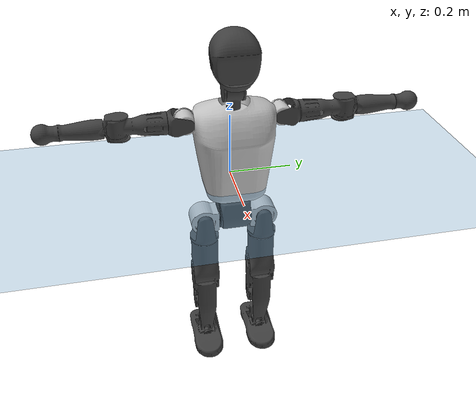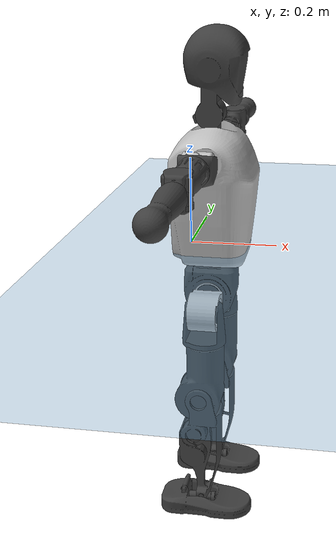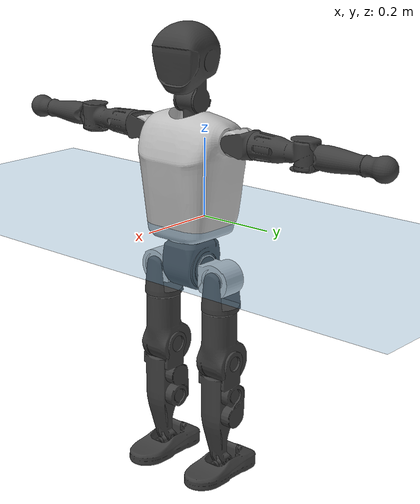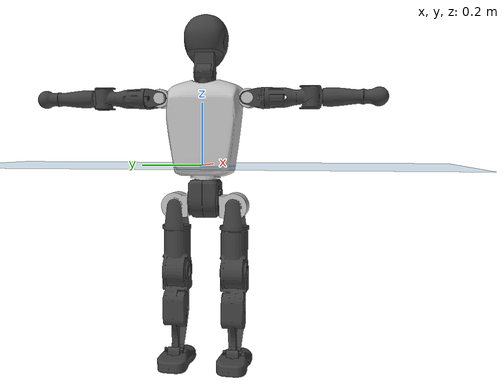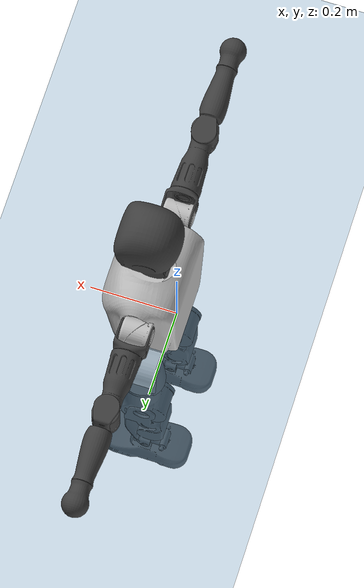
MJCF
<mujoco model="T1">
  <compiler angle="radian" assetdir="assets" balanceinertia="true" inertiafromgeom="false"/>

  <option timestep="0.005" density="1.2" viscosity="2e-05"/>

  <size nkey="1"/>

  <visual>
    <quality shadowsize="8192"/>
    <map shadowclip="0.5"/>
  </visual>

  <default>
    <default class="/">
      <joint armature="0.01" damping="0.01" frictionloss="0.1"/>
      <geom contype="0" conaffinity="0" group="1" solref="-1000 -80"/>
      <site size="0.01 0.005 0.005" group="5"/>
      <general forcelimited="true" biastype="affine" gainprm="25" biasprm="0 -25 -0.6"/>
      <default class="t1">
        <geom rgba="0.25 0.25 0.25 1"/>
        <default class="visual">
          <geom type="mesh" group="2"/>
        </default>
        <default class="collision">
          <geom group="3"/>
        </default>
        <default class="foot">
          <geom size="0.1115 0.05 0.015" type="box" condim="6" group="4" priority="1" solimp="0.015 1 0.015"/>
        </default>
        <default class="reward_collision_sphere">
          <geom group="5" rgba="1 0 0 1"/>
        </default>
      </default>
    </default>
  </default>

  <asset>
    <texture type="skybox" colorspace="auto" name="//unnamed_texture_0" builtin="gradient" rgb1="0.95 0.95 0.95" rgb2="0.95 0.95 0.95" width="100" height="600"/>
    <texture type="2d" colorspace="auto" name="texplane" builtin="checker" rgb1="0.345 0.575 0.748" rgb2="0.345 0.575 0.748" markrgb="1 1 1" width="512" height="512"/>
    <material name="MatPlane" class="/" texture="texplane" texuniform="true" texrepeat="2 2" specular="0.9"/>
    <mesh name="Trunk" class="/" file="Trunk.stl"/>
    <mesh name="H1" class="/" file="H1.stl"/>
    <mesh name="H2" class="/" file="H2.stl"/>
    <mesh name="AL1" class="/" file="AL1.stl"/>
    <mesh name="AL2" class="/" file="AL2.stl"/>
    <mesh name="AL3" class="/" file="AL3.stl"/>
    <mesh name="left_hand_link" class="/" file="left_hand_link.stl"/>
    <mesh name="AR1" class="/" file="AR1.stl"/>
    <mesh name="AR2" class="/" file="AR2.stl"/>
    <mesh name="AR3" class="/" file="AR3.stl"/>
    <mesh name="right_hand_link" class="/" file="right_hand_link.stl"/>
    <mesh name="Waist" class="/" file="Waist.stl"/>
    <mesh name="Hip_Pitch_Left" class="/" file="Hip_Pitch_Left.stl"/>
    <mesh name="Hip_Roll_Left" class="/" file="Hip_Roll_Left.stl"/>
    <mesh name="Hip_Yaw_Left" class="/" file="Hip_Yaw_Left.stl"/>
    <mesh name="Shank_Left" class="/" file="Shank_Left.stl"/>
    <mesh name="Ankle_Cross_Left" class="/" file="Ankle_Cross_Left.stl"/>
    <mesh name="left_foot_link" class="/" file="left_foot_link.stl"/>
    <mesh name="Hip_Pitch_Right" class="/" file="Hip_Pitch_Right.stl"/>
    <mesh name="Hip_Roll_Right" class="/" file="Hip_Roll_Right.stl"/>
    <mesh name="Hip_Yaw_Right" class="/" file="Hip_Yaw_Right.stl"/>
    <mesh name="Shank_Right" class="/" file="Shank_Right.stl"/>
    <mesh name="Ankle_Cross_Right" class="/" file="Ankle_Cross_Right.stl"/>
    <mesh name="right_foot_link" class="/" file="right_foot_link.stl"/>
  </asset>

  <worldbody>
    <geom name="floor" class="/" size="100 100 0.125" type="plane" group="0" material="MatPlane"/>
    <light name="toplight_shadow" class="/" pos="0 0 5" dir="0.0990148 0.0990148 -0.990148" type="directional" ambient="0.04 0.04 0.04" diffuse="0.55 0.55 0.55" specular="0.12 0.12 0.12"/>
    <light name="toplight_fill" class="/" pos="0 0 5" dir="0.0990148 0.0990148 -0.990148" type="directional" castshadow="false" ambient="0.04 0.04 0.04" diffuse="0.3 0.3 0.3" specular="0.08 0.08 0.08"/>
    <body name="trunk" childclass="t1" pos="-6.97014e-05 0.000356176 -5.86708e-05" quat="1 -7.57042e-06 -3.22234e-06 4.9865e-06">
      <inertial pos="0.0428413 -0.000487704 0.104563" quat="0.999945 0.00190408 -0.00977182 -0.00327394" mass="8.79601" diaginertia="0.0290253 0.0551539 0.0538167"/>
      <joint name="//unnamed_joint_0" type="free" armature="0" damping="0" frictionloss="0"/>
      <geom name="//unnamed_geom_1" class="visual" rgba="0.76 0.76 0.76 1" mesh="Trunk"/>
      <geom name="//unnamed_geom_2" class="collision" size="0.0679548 0.0906064 0.13591" pos="0.0476524 0 0.119083" type="box"/>
      <geom name="//unnamed_geom_3" class="reward_collision_sphere" size="0.104197" pos="0.0476524 0 0.0992357"/>
      <geom name="//unnamed_geom_4" class="reward_collision_sphere" size="0.013591" pos="0.0476524 0.0791883 0"/>
      <geom name="//unnamed_geom_5" class="reward_collision_sphere" size="0.013591" pos="0.0476524 -0.0791883 0"/>
      <geom name="//unnamed_geom_6" class="reward_collision_sphere" size="0.013591" pos="0.0476524 0.0996841 0.178624"/>
      <geom name="//unnamed_geom_7" class="reward_collision_sphere" size="0.013591" pos="0.0476524 -0.0996841 0.178624"/>
      <site name="imu" pos="-0.000198262 0.00328864 0.0044718" size="0.00906064"/>
      <camera name="track" pos="0 -1.86325 0" quat="0.707107 0.707107 0 0" mode="trackcom"/>
      <camera name="ego_camera" pos="0.0968932 0 0.41679" quat="-0.5 -0.5 0.5 0.5"/>
      <body name="H1" pos="0.0490769 0.000532937 0.24145" quat="1 -3.62509e-05 -8.44632e-05 -0.000196187">
        <inertial pos="-0.000687383 -0.00189944 0.056092" quat="0.764947 -0.0111688 0.00288785 0.64399" mass="0.327559" diaginertia="7.74572e-05 0.000155449 0.000145483"/>
        <joint name="AAHead_yaw" pos="0 0 0" axis="0.00368721 0.00237563 0.99999" stiffness="0.000774939" range="-1.58916 1.59886" armature="0.00911468" damping="0.00870214" frictionloss="0.0935858"/>
        <geom name="//unnamed_geom_8" class="visual" mesh="H1"/>
        <body name="H2" pos="-0.000359294 -0.000292167 0.0593279" quat="1 0.000165695 -0.00031928 0.000768752">
          <inertial pos="0.00643445 2.90212e-05 0.0976845" quat="0.988651 0.103301 -0.0763284 -0.0779288" mass="0.468877" diaginertia="0.000644531 0.0013691 0.00162776"/>
          <joint name="Head_pitch" pos="0 0 0" axis="0.00069661 -1 0.000694622" range="-1.21963 0.345746" armature="0.0089369" damping="0.00801038" frictionloss="0.089131"/>
          <geom name="//unnamed_geom_9" class="visual" mesh="H2"/>
          <geom name="//unnamed_geom_10" class="collision" size="0.0724851" pos="0.00794206 0 0.109159"/>
          <geom name="//unnamed_geom_11" class="reward_collision_sphere" size="0.0815457" pos="0.0158841 0 0.0992357"/>
        </body>
      </body>
      <body name="AL1" pos="0.0470107 0.0987463 0.217978" quat="1 1.63132e-05 0.000444352 8.58671e-06">
        <inertial pos="-0.00112603 0.0423852 4.78909e-05" quat="0.505352 0.491802 -0.505172 0.497546" mass="0.395904" diaginertia="0.000438312 0.000909348 0.000282976"/>
        <joint name="Left_Shoulder_Pitch" pos="0 0 0" axis="0.00205729 0.999997 0.00127743" range="-3.28297 1.22333" armature="0.00927365" damping="0.011948" frictionloss="0.0949859"/>
        <geom name="//unnamed_geom_12" class="visual" rgba="0.76 0.76 0.76 1" mesh="AL1"/>
        <body name="AL2" pos="0.00107412 0.0435441 -0.000171101" quat="1 -0.000236997 -0.000360557 -0.000167947">
          <inertial pos="0.00460628 0.0343286 -0.000245258" quat="0.489693 0.511896 -0.484171 0.513557" mass="0.118276" diaginertia="0.000125806 0.000239167 0.000169166"/>
          <joint name="Left_Shoulder_Roll" pos="0 0 0" axis="-0.999998 0.000130753 -0.0018197" stiffness="0.00177452" range="-1.57449 1.73665" armature="0.0087881" damping="0.00470577" frictionloss="0.0883014"/>
          <geom name="//unnamed_geom_13" class="visual" mesh="AL2"/>
          <body name="AL3" pos="0.00165897 0.0576062 0.00089761" quat="1 -0.000199979 -1.42777e-06 -0.000349463">
            <inertial pos="0.000660224 0.0798545 -0.001183" quat="0.709329 0.70484 0.000513705 -0.0072426" mass="0.774621" diaginertia="0.00416794 0.00937022 0.000609581"/>
            <joint name="Left_Elbow_Pitch" pos="0 0 0" axis="0.000918253 -0.999998 -0.0016042" range="-2.27224 2.29799" armature="0.00917353" damping="0.0104431" frictionloss="0.0973277"/>
            <geom name="//unnamed_geom_14" class="visual" mesh="AL3"/>
            <geom name="//unnamed_geom_15" class="collision" size="0.0271819 0.0679548" pos="0 0.0465814 0" quat="0.707105 0.707108 0 0" type="cylinder"/>
            <geom name="//unnamed_geom_16" class="reward_collision_sphere" size="0.0326183"/>
            <body name="left_hand_link" pos="0.00145617 0.136465 0.00146466" quat="1 -4.84117e-06 -0.000215064 -0.000621999">
              <inertial pos="-0.00068061 0.101915 0.000268962" quat="0.707871 0.706342 -7.31637e-05 -0.000239108" mass="0.246747" diaginertia="0.00262306 0.0057194 0.000205755"/>
              <joint name="Left_Elbow_Yaw" pos="0 0 0" axis="0.00397103 0.00355222 0.999986" range="-2.42574 0.0316164" armature="0.00893469" damping="0.00601741" frictionloss="0.0863063"/>
              <geom name="//unnamed_geom_17" class="visual" mesh="left_hand_link"/>
              <geom name="//unnamed_geom_18" class="collision" size="0.0271819 0.0792806" pos="0 0.121112 0" quat="0.707105 0.707108 0 0" type="cylinder"/>
              <geom name="//unnamed_geom_19" class="reward_collision_sphere" size="0.0453032"/>
              <geom name="//unnamed_geom_20" class="reward_collision_sphere" size="0.0317122" pos="0 0.102479 0"/>
              <geom name="//unnamed_geom_21" class="reward_collision_sphere" size="0.0317122" pos="0 0.2003 0"/>
            </body>
          </body>
        </body>
      </body>
      <body name="AR1" pos="0.0452881 -0.0971131 0.216068" quat="1 0.000136368 0.000425451 5.73075e-06">
        <inertial pos="-0.000555364 -0.0428365 -0.000393697" quat="0.504262 0.495149 -0.503469 0.497058" mass="0.389547" diaginertia="0.000433403 0.000917897 0.000282603"/>
        <joint name="Right_Shoulder_Pitch" pos="0 0 0" axis="0.0039352 -0.999945 0.00967714" range="-1.22688 3.33042" armature="0.00892429" damping="0.00208962" frictionloss="0.0848655"/>
        <geom name="//unnamed_geom_22" class="visual" rgba="0.76 0.76 0.76 1" mesh="AR1"/>
        <body name="AR2" pos="0.000889673 -0.0431405 -3.20389e-05" quat="1 -4.99805e-05 3.13508e-05 -0.000135634">
          <inertial pos="0.00295951 -0.0351629 0.00101478" quat="0.511073 0.490503 -0.510004 0.487961" mass="0.122339" diaginertia="0.000128098 0.000248593 0.000172339"/>
          <joint name="Right_Shoulder_Roll" pos="0 0 0" axis="-0.999952 -0.0072041 0.00666798" range="-1.73988 1.56855" armature="0.00884807" damping="0.0055923" frictionloss="0.0917706"/>
          <geom name="//unnamed_geom_23" class="visual" mesh="AR2"/>
          <body name="AR3" pos="-0.0010499 -0.056684 0.000608334" quat="1 0.000106427 -9.32798e-05 -0.000429936">
            <inertial pos="-0.000529189 -0.0795704 -2.1446e-05" quat="0.70832 0.705876 0.00197957 -0.00431467" mass="0.776808" diaginertia="0.00415971 0.00919557 0.000609948"/>
            <joint name="Right_Elbow_Pitch" pos="0 0 0" axis="0.000216124 1 6.12472e-05" range="-2.27191 2.25788" armature="0.00909925" damping="0.00997123" frictionloss="0.0899301"/>
            <geom name="//unnamed_geom_24" class="visual" mesh="AR3"/>
            <geom name="//unnamed_geom_25" class="collision" size="0.0271819 0.0679548" pos="0 -0.0465814 0" quat="0.707105 0.707108 0 0" type="cylinder"/>
            <geom name="//unnamed_geom_26" class="reward_collision_sphere" size="0.0326183"/>
            <body name="right_hand_link" pos="-3.58419e-05 -0.137294 -0.000176137" quat="1 2.4502e-05 6.10403e-06 1.62626e-05">
              <inertial pos="-0.000721705 -0.102228 -0.000271233" quat="0.706862 0.707345 -0.00252365 0.00126367" mass="0.240748" diaginertia="0.00261587 0.00571535 0.000207878"/>
              <joint name="Right_Elbow_Yaw" pos="0 0 0" axis="-0.00068531 0.0012566 0.999999" range="-0.0171297 2.44964" armature="0.00884212" damping="0.00807197" frictionloss="0.0891455"/>
              <geom name="//unnamed_geom_27" class="visual" mesh="right_hand_link"/>
              <geom name="//unnamed_geom_28" class="collision" size="0.0271819 0.0792806" pos="0 -0.121112 0" quat="0.707105 0.707108 0 0" type="cylinder"/>
              <geom name="//unnamed_geom_29" class="reward_collision_sphere" size="0.0453032"/>
              <geom name="//unnamed_geom_30" class="reward_collision_sphere" size="0.0317122" pos="0 -0.102479 0"/>
              <geom name="//unnamed_geom_31" class="reward_collision_sphere" size="0.0317122" pos="0 -0.2003 0"/>
            </body>
          </body>
        </body>
      </body>
      <body name="Waist" pos="0.0481902 -0.00138736 -0.114248" quat="1 -4.62019e-06 1.73927e-05 -8.24265e-06">
        <inertial pos="0.00214664 -0.00083043 0.00777768" quat="0.983642 0.000319083 -0.180116 0.00266872" mass="1.87596" diaginertia="0.00164821 0.00363464 0.00450753"/>
        <joint name="Waist" pos="0 0 0" axis="0.00160957 0.0019801 0.999997" range="-1.56433 1.57465" armature="0.00884334" damping="0.00917096" frictionloss="0.0852768"/>
        <geom name="//unnamed_geom_32" class="visual" mesh="Waist"/>
        <body name="Hip_Pitch_Left" pos="-0.000598906 0.0978008 0.000327488" quat="1 -0.000418934 -0.000112407 -4.01336e-05">
          <inertial pos="0.000568855 -0.00662348 -0.0179438" quat="0.975828 0.218217 0.0112902 0.00360714" mass="0.759429" diaginertia="0.00057607 0.00105565 0.0012357"/>
          <joint name="Left_Hip_Pitch" pos="0 0 0" axis="0.00226571 0.999982 0.00550169" range="-1.81072 1.56249" armature="0.00933936" damping="0.0119433" frictionloss="0.0867511"/>
          <geom name="//unnamed_geom_33" class="visual" rgba="0.76 0.76 0.76 1" mesh="Hip_Pitch_Left"/>
          <body name="Hip_Roll_Left" pos="0.00137599 -0.000808075 -0.0209025" quat="1 0.000926925 -0.000254625 0.000141896">
            <inertial pos="0.000302125 -0.000225069 -0.0534859" quat="0.709914 0.00070455 -0.00434356 0.704275" mass="0.287466" diaginertia="0.000550058 0.00107603 0.000500933"/>
            <joint name="Left_Hip_Roll" pos="0 0 0" axis="-0.999977 -0.00596007 -0.00317217" range="-1.56488 0.222186" armature="0.00941385" damping="0.0121201" frictionloss="0.0895616"/>
            <geom name="//unnamed_geom_34" class="visual" mesh="Hip_Roll_Left"/>
            <geom name="//unnamed_geom_35" class="reward_collision_sphere" size="0.0498335"/>
            <body name="Hip_Yaw_Left" pos="0.00235951 -0.00101352 -0.0812871" quat="1 0.000357995 0.000553884 -0.000369299">
              <inertial pos="-0.00498767 -0.00077723 -0.0877823" quat="0.69665 -0.0362679 -0.0313281 0.715809" mass="1.61274" diaginertia="0.00817951 0.0177859 0.00249531"/>
              <joint name="Left_Hip_Yaw" pos="0 0 0" axis="-0.00584775 0.0043106 -0.999974" range="-1.00406 0.983099" armature="0.0093104" damping="0.00980867" frictionloss="0.0861725"/>
              <geom name="//unnamed_geom_36" class="visual" mesh="Hip_Yaw_Left"/>
              <geom name="//unnamed_geom_37" class="collision" size="0.0453032 0.0724851" type="cylinder"/>
              <body name="Shank_Left" pos="-0.0116949 -0.000446421 -0.134842" quat="1 -2.84113e-05 7.23361e-05 6.80204e-06">
                <inertial pos="-0.00427512 -0.000147357 -0.123267" quat="0.997546 0.000233378 -0.0243713 0.0656346" mass="1.30311" diaginertia="0.0110414 0.0244093 0.00179536"/>
                <joint name="Left_Knee_Pitch" pos="0 0 0" axis="0.000339704 1 0.0007772" range="-0.0189986 2.32149" armature="0.00894958" damping="0.011165" frictionloss="0.0927775"/>
                <geom name="//unnamed_geom_38" class="visual" mesh="Shank_Left"/>
                <geom name="//unnamed_geom_39" class="collision" size="0.0453032 0.0679548" pos="0 0 -0.119083" type="cylinder"/>
                <geom name="//unnamed_geom_40" class="reward_collision_sphere" size="0.0588941"/>
                <body name="Ankle_Cross_Left" pos="-0.000699986 -0.000173173 -0.276951" quat="1 -0.00026208 -0.000133792 0.000239896">
                  <inertial pos="-0.00300729 -0.000181462 -0.0070062" quat="0.444082 0.55013 0.551033 0.443295" mass="0.0553555" diaginertia="9.12912e-06 1.83739e-05 1.10157e-05"/>
                  <joint name="Left_Ankle_Pitch" pos="0 0 0" axis="0.00199933 0.999989 -0.00433462" range="-0.858281 0.336671" armature="0.00901853" damping="0.00414173" frictionloss="0.0919738"/>
                  <geom name="//unnamed_geom_41" class="visual" mesh="Ankle_Cross_Left"/>
                  <body name="left_foot_link" pos="-0.000875065 -0.000544345 -0.0119123" quat="1 -9.96819e-05 -3.11818e-05 1.77122e-05">
                    <inertial pos="-0.000690687 0.000365945 -0.00873987" quat="-0.00129404 0.618591 0.00099451 0.785712" mass="0.500837" diaginertia="0.000867717 0.00164792 0.00207024"/>
                    <joint name="Left_Ankle_Roll" pos="0 0 0" axis="-1 -0.000127525 -0.000242462" range="-0.426561 0.464414" armature="0.00971233" damping="0.00990759" frictionloss="0.0873907"/>
                    <geom name="//unnamed_geom_42" class="visual" mesh="left_foot_link"/>
                    <geom name="left_foot" class="foot" size="0.104271 0.0439817 0.0140961" pos="0.00794206 0 -0.0148854"/>
                    <geom name="//unnamed_geom_44" class="reward_collision_sphere" size="0.0471153" pos="0.00794206 0 -0.0148854"/>
                    <geom name="//unnamed_geom_45" class="reward_collision_sphere" size="0.0271819" pos="0.0754496 -0.0214274 -0.0148854"/>
                    <geom name="//unnamed_geom_46" class="reward_collision_sphere" size="0.0271819" pos="-0.0555944 -0.0214274 -0.0148854"/>
                    <site name="left_foot" class="foot" pos="0.00794206 0 -0.0148854" size="0.00906064"/>
                  </body>
                </body>
              </body>
            </body>
          </body>
        </body>
        <body name="Hip_Pitch_Right" pos="-0.000268217 -0.0977594 -0.000224246" quat="1 0.000245646 0.000276724 -0.000244233">
          <inertial pos="-0.000316089 0.00755953 -0.0177664" quat="0.973731 -0.227434 0.0105484 -0.00312095" mass="0.777529" diaginertia="0.000577344 0.00103876 0.00121746"/>
          <joint name="Right_Hip_Pitch" pos="0 0 0" axis="-0.00316223 -0.999994 0.00172013" range="-1.5701 1.81525" armature="0.0099268" damping="0.00632239" frictionloss="0.0950278"/>
          <geom name="//unnamed_geom_47" class="visual" rgba="0.76 0.76 0.76 1" mesh="Hip_Pitch_Right"/>
          <body name="Hip_Roll_Right" pos="0.000372003 0.000666194 -0.0188865" quat="1 0.000192784 0.000403733 -0.000166072">
            <inertial pos="0.000804371 -0.00162337 -0.0530679" quat="0.70749 -0.00198931 -0.00708704 0.706685" mass="0.281328" diaginertia="0.000541826 0.00103681 0.000483558"/>
            <joint name="Right_Hip_Roll" pos="0 0 0" axis="-0.999998 2.39575e-05 0.00220821" range="-0.208284 1.57022" armature="0.00904903" damping="0.00542612" frictionloss="0.0905534"/>
            <geom name="//unnamed_geom_48" class="visual" mesh="Hip_Roll_Right"/>
            <geom name="//unnamed_geom_49" class="reward_collision_sphere" size="0.0498335"/>
            <body name="Hip_Yaw_Right" pos="0.000517118 -1.25328e-05 -0.08207" quat="1 -0.000201329 -0.000122164 2.52189e-05">
              <inertial pos="-0.00576096 -0.00216131 -0.089702" quat="0.712468 -0.0326702 -0.0313483 0.700242" mass="1.56139" diaginertia="0.00793653 0.0173376 0.00244797"/>
              <joint name="Right_Hip_Yaw" pos="0 0 0" axis="-0.00041907 0.000614691 -1" stiffness="0.000282101" range="-0.987263 1.01025" armature="0.00894388" damping="0.00584932" frictionloss="0.0909523"/>
              <geom name="//unnamed_geom_50" class="visual" mesh="Hip_Yaw_Right"/>
              <geom name="//unnamed_geom_51" class="collision" size="0.0453032 0.0724851" type="cylinder"/>
              <body name="Shank_Right" pos="-0.0103962 -0.00139859 -0.133916" quat="1 -0.000104477 -0.000186513 -0.000238034">
                <inertial pos="-0.00528415 -0.00064507 -0.120678" quat="0.999235 0.000442474 -0.023982 -0.0309002" mass="1.33343" diaginertia="0.0108247 0.0247103 0.0018878"/>
                <joint name="Right_Knee_Pitch" pos="0 0 0" axis="0.00220813 -0.999987 -0.00455716" range="-2.36072 -0.0198705" armature="0.00908804" damping="0.00604669" frictionloss="0.0891598"/>
                <geom name="//unnamed_geom_52" class="visual" mesh="Shank_Right"/>
                <geom name="//unnamed_geom_53" class="collision" size="0.0453032 0.0679548" pos="0 0 -0.119083" type="cylinder"/>
                <geom name="//unnamed_geom_54" class="reward_collision_sphere" size="0.0588941"/>
                <body name="Ankle_Cross_Right" pos="0.000733873 -0.000862511 -0.277244" quat="1 -3.04958e-05 4.00688e-05 1.35559e-05">
                  <inertial pos="-0.00277138 0.00025092 -0.00910202" quat="0.444321 0.553411 0.552282 0.437378" mass="0.0539976" diaginertia="8.88991e-06 1.78573e-05 1.06325e-05"/>
                  <joint name="Right_Ankle_Pitch" pos="0 0 0" axis="-0.00142173 -0.999994 0.00308949" range="-0.357127 0.853041" armature="0.00901859" damping="0.00652046" frictionloss="0.0898344"/>
                  <geom name="//unnamed_geom_55" class="visual" mesh="Ankle_Cross_Right"/>
                  <body name="right_foot_link" pos="0.000181248 -0.000821193 -0.011873" quat="1 0.000248441 5.75211e-05 0.000353343">
                    <inertial pos="-0.00176974 0.0001557 -0.00911363" quat="-0.000324345 0.622022 0.000229713 0.782999" mass="0.506599" diaginertia="0.000852548 0.00167485 0.00211735"/>
                    <joint name="Right_Ankle_Roll" pos="0 0 0" axis="-0.999999 0.000155713 -0.00106086" range="-0.443603 0.44271" armature="0.00861467" damping="0.0160335" frictionloss="0.0891384"/>
                    <geom name="//unnamed_geom_56" class="visual" mesh="right_foot_link"/>
                    <geom name="right_foot" class="foot" size="0.0973755 0.0453495 0.0139411" pos="0.00794206 0 -0.0148854"/>
                    <geom name="//unnamed_geom_58" class="reward_collision_sphere" size="0.0362425"/>
                    <geom name="//unnamed_geom_59" class="reward_collision_sphere" size="0.0271819" pos="0.00794206 0 -0.0148854"/>
                    <geom name="//unnamed_geom_60" class="reward_collision_sphere" size="0.0271819" pos="0.0754496 0.0214274 -0.0148854"/>
                    <geom name="//unnamed_geom_61" class="reward_collision_sphere" size="0.0271819" pos="-0.0555944 0.0214274 -0.0148854"/>
                    <site name="right_foot" class="foot" pos="0.00794206 0 -0.0148854" size="0.00906064"/>
                  </body>
                </body>
              </body>
            </body>
          </body>
        </body>
      </body>
    </body>
  </worldbody>

  <contact>
    <pair class="/" geom1="floor" geom2="left_foot" name="//unnamed_contact_0"/>
    <pair class="/" geom1="floor" geom2="right_foot" name="//unnamed_contact_1"/>
  </contact>

  <actuator>
    <general name="AAHead_yaw" class="/" joint="AAHead_yaw" forcerange="-6.24917 6.24917" gainprm="22.6372" biasprm="0 -22.6372 -0.542273"/>
    <general name="Head_pitch" class="/" joint="Head_pitch" forcerange="-6.28748 6.28748" gainprm="22.6372" biasprm="0 -22.6372 -0.542273"/>
    <general name="Left_Shoulder_Pitch" class="/" joint="Left_Shoulder_Pitch" forcerange="-16.7903 16.7903" gainprm="22.6372" biasprm="0 -22.6372 -0.542273"/>
    <general name="Left_Shoulder_Roll" class="/" joint="Left_Shoulder_Roll" forcerange="-16.5103 16.5103" gainprm="22.6372" biasprm="0 -22.6372 -0.542273"/>
    <general name="Left_Elbow_Pitch" class="/" joint="Left_Elbow_Pitch" forcerange="-16.9959 16.9959" gainprm="22.6372" biasprm="0 -22.6372 -0.542273"/>
    <general name="Left_Elbow_Yaw" class="/" joint="Left_Elbow_Yaw" forcerange="-16.7772 16.7772" gainprm="22.6372" biasprm="0 -22.6372 -0.542273"/>
    <general name="Right_Shoulder_Pitch" class="/" joint="Right_Shoulder_Pitch" forcerange="-15.5971 15.5971" gainprm="22.6372" biasprm="0 -22.6372 -0.542273"/>
    <general name="Right_Shoulder_Roll" class="/" joint="Right_Shoulder_Roll" forcerange="-16.5479 16.5479" gainprm="22.6372" biasprm="0 -22.6372 -0.542273"/>
    <general name="Right_Elbow_Pitch" class="/" joint="Right_Elbow_Pitch" forcerange="-17.0526 17.0526" gainprm="22.6372" biasprm="0 -22.6372 -0.542273"/>
    <general name="Right_Elbow_Yaw" class="/" joint="Right_Elbow_Yaw" forcerange="-15.7028 15.7028" gainprm="22.6372" biasprm="0 -22.6372 -0.542273"/>
    <general name="Waist" class="/" joint="Waist" forcerange="-26.9868 26.9868" gainprm="22.6372" biasprm="0 -22.6372 -0.542273"/>
    <general name="Left_Hip_Pitch" class="/" joint="Left_Hip_Pitch" forcerange="-41.7096 41.7096" gainprm="22.6372" biasprm="0 -22.6372 -0.542273"/>
    <general name="Left_Hip_Roll" class="/" joint="Left_Hip_Roll" forcerange="-27.9906 27.9906" gainprm="22.6372" biasprm="0 -22.6372 -0.542273"/>
    <general name="Left_Hip_Yaw" class="/" joint="Left_Hip_Yaw" forcerange="-25.5633 25.5633" gainprm="22.6372" biasprm="0 -22.6372 -0.542273"/>
    <general name="Left_Knee_Pitch" class="/" joint="Left_Knee_Pitch" forcerange="-53.8695 53.8695" gainprm="22.6372" biasprm="0 -22.6372 -0.542273"/>
    <general name="Left_Ankle_Pitch" class="/" joint="Left_Ankle_Pitch" forcerange="-16.8211 16.8211" gainprm="22.6372" biasprm="0 -22.6372 -0.542273"/>
    <general name="Left_Ankle_Roll" class="/" joint="Left_Ankle_Roll" forcerange="-13.5705 13.5705" gainprm="22.6372" biasprm="0 -22.6372 -0.542273"/>
    <general name="Right_Hip_Pitch" class="/" joint="Right_Hip_Pitch" forcerange="-40.5565 40.5565" gainprm="22.6372" biasprm="0 -22.6372 -0.542273"/>
    <general name="Right_Hip_Roll" class="/" joint="Right_Hip_Roll" forcerange="-28.0324 28.0324" gainprm="22.6372" biasprm="0 -22.6372 -0.542273"/>
    <general name="Right_Hip_Yaw" class="/" joint="Right_Hip_Yaw" forcerange="-28.1322 28.1322" gainprm="22.6372" biasprm="0 -22.6372 -0.542273"/>
    <general name="Right_Knee_Pitch" class="/" joint="Right_Knee_Pitch" forcerange="-55.2335 55.2335" gainprm="22.6372" biasprm="0 -22.6372 -0.542273"/>
    <general name="Right_Ankle_Pitch" class="/" joint="Right_Ankle_Pitch" forcerange="-17.6142 17.6142" gainprm="22.6372" biasprm="0 -22.6372 -0.542273"/>
    <general name="Right_Ankle_Roll" class="/" joint="Right_Ankle_Roll" forcerange="-13.009 13.009" gainprm="22.6372" biasprm="0 -22.6372 -0.542273"/>
  </actuator>

  <sensor>
    <gyro site="imu" name="imu_angular_velocity"/>
    <velocimeter site="imu" name="imu_linear_velocity"/>
    <framelinvel objtype="site" objname="left_foot" name="left_foot_global_linear_velocity"/>
    <framelinvel objtype="site" objname="right_foot" name="right_foot_global_linear_velocity"/>
  </sensor>

  <keyframe>
    <key name="home" qpos="0 0 0.6385 1 0 0 0 0 0 0 1.4 0 -0.4 0 -1.4 0 0.4 0 -0.4 0 0 0.8 -0.4 0 0.4 0 0 -0.8 0.4 0"/>
  </keyframe>
</mujoco>
